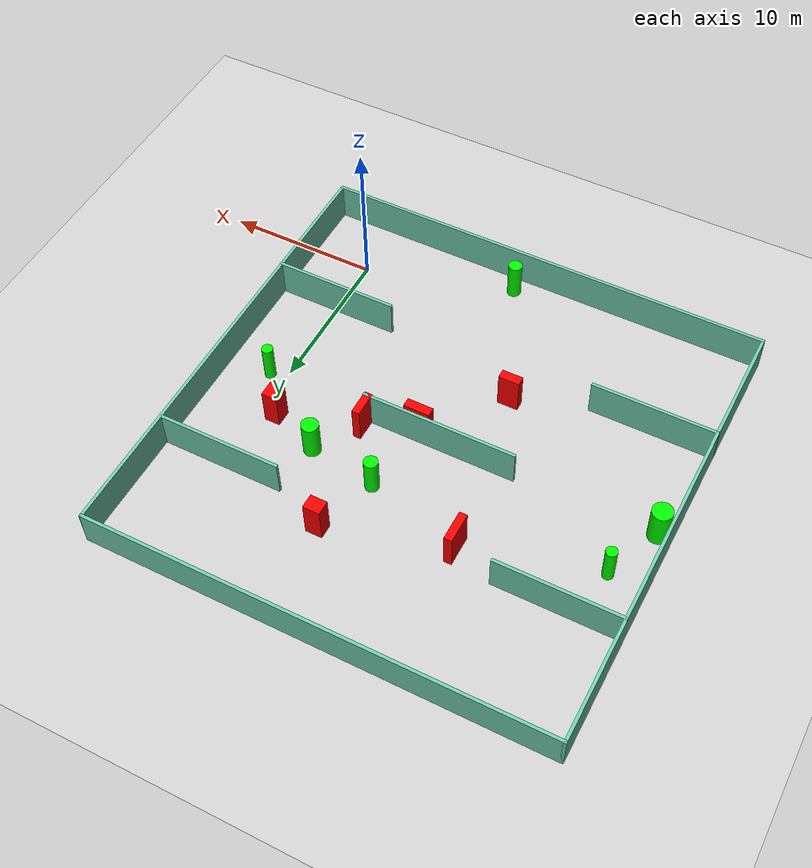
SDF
<sdf version="1.7">
 <world name="default">
  <light name="sun" type="directional">
   <pose>0 0 10 0 -0 0</pose>
   <diffuse>0.8 0.8 0.8 1</diffuse>
   <specular>0.2 0.2 0.2 1</specular>
   <attenuation>
    <range>1000</range>
    <constant>0.9</constant>
    <linear>0.01</linear>
    <quadratic>0.001</quadratic>
   </attenuation>
   <direction>-0.5 0.1 -0.9</direction>
   <spot><inner_angle>0</inner_angle><outer_angle>0</outer_angle><falloff>0</falloff></spot>
  </light>
  <model name="ground_plane">
   <static>1</static>
   <link name="link">
    <collision name="collision">
     <geometry><plane><normal>0 0 1</normal><size>100 100</size></plane></geometry>
     <surface>
      <contact><collide_bitmask>65535</collide_bitmask></contact>
      <friction><ode><mu>100</mu><mu2>50</mu2></ode></friction>
     </surface>
    </collision>
    <visual name="visual">
     <cast_shadows>0</cast_shadows>
     <geometry><plane><normal>0 0 1</normal><size>100 100</size></plane></geometry>
     <material>
      <script><uri>file://media/materials/scripts/gazebo.material</uri><name>Gazebo/Grey</name></script>
     </material>
    </visual>
   </link>
  </model>
  <gravity>0 0 -9.8</gravity>
  <magnetic_field>6e-06 2.3e-05 -4.2e-05</magnetic_field>
  <atmosphere type="adiabatic"/>
  <physics type="ode">
   <max_step_size>0.001</max_step_size>
   <real_time_factor>1</real_time_factor>
   <real_time_update_rate>1000</real_time_update_rate>
  </physics>
  <scene><ambient>0.4 0.4 0.4 1</ambient><background>0.7 0.7 0.7 1</background><shadows>1</shadows></scene>
  <spherical_coordinates>
   <surface_model>EARTH_WGS84</surface_model>
   <latitude_deg>0</latitude_deg>
   <longitude_deg>0</longitude_deg>
   <elevation>0</elevation>
   <heading_deg>0</heading_deg>
  </spherical_coordinates>
  <model name="my_base_walls">
   <link name="Wall_10">
    <collision name="Wall_10_Collision">
     <geometry><box><size>8.2 0.2 2.5</size></box></geometry>
     <pose>0 0 1.25 0 -0 0</pose>
    </collision>
    <visual name="Wall_10_Visual">
     <pose>0 0 1.25 0 -0 0</pose>
     <geometry><box><size>8.2 0.2 2.5</size></box></geometry>
     <material>
      <script><uri>file://media/materials/scripts/gazebo.material</uri><name>Gazebo/Grey</name></script>
      <ambient>0.435294 0.796078 0.67451 1</ambient>
     </material>
     <meta><layer>0</layer></meta>
    </visual>
    <pose>-11 -7 0 0 -0 0</pose>
   </link>
   <link name="Wall_12">
    <collision name="Wall_12_Collision">
     <geometry><box><size>8.2 0.2 2.5</size></box></geometry>
     <pose>0 0 1.25 0 -0 0</pose>
    </collision>
    <visual name="Wall_12_Visual">
     <pose>0 0 1.25 0 -0 0</pose>
     <geometry><box><size>8.2 0.2 2.5</size></box></geometry>
     <material>
      <script><uri>file://media/materials/scripts/gazebo.material</uri><name>Gazebo/Grey</name></script>
      <ambient>0.435294 0.796078 0.67451 1</ambient>
     </material>
     <meta><layer>0</layer></meta>
    </visual>
    <pose>-11 7 0 0 -0 0</pose>
   </link>
   <link name="Wall_14">
    <collision name="Wall_14_Collision">
     <geometry><box><size>8.2 0.2 2.5</size></box></geometry>
     <pose>0 0 1.25 0 -0 0</pose>
    </collision>
    <visual name="Wall_14_Visual">
     <pose>0 0 1.25 0 -0 0</pose>
     <geometry><box><size>8.2 0.2 2.5</size></box></geometry>
     <material>
      <script><uri>file://media/materials/scripts/gazebo.material</uri><name>Gazebo/Grey</name></script>
      <ambient>0.435294 0.796078 0.67451 1</ambient>
     </material>
     <meta><layer>0</layer></meta>
    </visual>
    <pose>11 7 0 0 -0 3.14159</pose>
   </link>
   <link name="Wall_16">
    <collision name="Wall_16_Collision">
     <geometry><box><size>10.2 0.2 2.5</size></box></geometry>
     <pose>0 0 1.25 0 -0 0</pose>
    </collision>
    <visual name="Wall_16_Visual">
     <pose>0 0 1.25 0 -0 0</pose>
     <geometry><box><size>10.2 0.2 2.5</size></box></geometry>
     <material>
      <script><uri>file://media/materials/scripts/gazebo.material</uri><name>Gazebo/Grey</name></script>
      <ambient>0.435294 0.796078 0.67451 1</ambient>
     </material>
     <meta><layer>0</layer></meta>
    </visual>
    <pose>0 0 0 0 -0 3.14159</pose>
   </link>
   <link name="Wall_2">
    <collision name="Wall_2_Collision">
     <geometry><box><size>30.2 0.2 2.5</size></box></geometry>
     <pose>0 0 1.25 0 -0 0</pose>
    </collision>
    <visual name="Wall_2_Visual">
     <pose>0 0 1.25 0 -0 0</pose>
     <geometry><box><size>30.2 0.2 2.5</size></box></geometry>
     <material>
      <script><uri>file://media/materials/scripts/gazebo.material</uri><name>Gazebo/Grey</name></script>
      <ambient>0.435294 0.796078 0.67451 1</ambient>
     </material>
     <meta><layer>0</layer></meta>
    </visual>
    <pose>0 -15 0 0 -0 3.14159</pose>
   </link>
   <link name="Wall_3">
    <collision name="Wall_3_Collision">
     <geometry><box><size>30.2 0.2 2.5</size></box></geometry>
     <pose>0 0 1.25 0 -0 0</pose>
    </collision>
    <visual name="Wall_3_Visual">
     <pose>0 0 1.25 0 -0 0</pose>
     <geometry><box><size>30.2 0.2 2.5</size></box></geometry>
     <material>
      <script><uri>file://media/materials/scripts/gazebo.material</uri><name>Gazebo/Grey</name></script>
      <ambient>0.435294 0.796078 0.67451 1</ambient>
     </material>
     <meta><layer>0</layer></meta>
    </visual>
    <pose>-15 0 0 0 -0 1.5708</pose>
   </link>
   <link name="Wall_4">
    <collision name="Wall_4_Collision">
     <geometry><box><size>30.2 0.2 2.5</size></box></geometry>
     <pose>0 0 1.25 0 -0 0</pose>
    </collision>
    <visual name="Wall_4_Visual">
     <pose>0 0 1.25 0 -0 0</pose>
     <geometry><box><size>30.2 0.2 2.5</size></box></geometry>
     <material>
      <script><uri>file://media/materials/scripts/gazebo.material</uri><name>Gazebo/Grey</name></script>
      <ambient>0.435294 0.796078 0.67451 1</ambient>
     </material>
     <meta><layer>0</layer></meta>
    </visual>
    <pose>0 15 0 0 -0 0</pose>
   </link>
   <link name="Wall_6">
    <collision name="Wall_6_Collision">
     <geometry><box><size>30.2 0.2 2.5</size></box></geometry>
     <pose>0 0 1.25 0 -0 0</pose>
    </collision>
    <visual name="Wall_6_Visual">
     <pose>0 0 1.25 0 -0 0</pose>
     <geometry><box><size>30.2 0.2 2.5</size></box></geometry>
     <material>
      <script><uri>file://media/materials/scripts/gazebo.material</uri><name>Gazebo/Grey</name></script>
      <ambient>0.435294 0.796078 0.67451 1</ambient>
     </material>
     <meta><layer>0</layer></meta>
    </visual>
    <pose>15 0 0 0 -0 1.5708</pose>
   </link>
   <link name="Wall_8">
    <collision name="Wall_8_Collision">
     <geometry><box><size>8.2 0.2 2.5</size></box></geometry>
     <pose>0 0 1.25 0 -0 0</pose>
    </collision>
    <visual name="Wall_8_Visual">
     <pose>0 0 1.25 0 -0 0</pose>
     <geometry><box><size>8.2 0.2 2.5</size></box></geometry>
     <material>
      <script><uri>file://media/materials/scripts/gazebo.material</uri><name>Gazebo/Grey</name></script>
      <ambient>0.435294 0.796078 0.67451 1</ambient>
     </material>
     <meta><layer>0</layer></meta>
    </visual>
    <pose>11 -7 0 0 -0 3.14159</pose>
   </link>
   <static>1</static>
   <pose>-11 11 0 0 -0 0</pose>
  </model>
  <model name="cylinder1">
   <static>1</static>
   <link name="link">
    <inertial>
     <mass>1</mass>
     <inertia><ixx>0.5</ixx><ixy>0</ixy><ixz>0</ixz><iyy>0.5</iyy><iyz>0</iyz><izz>1</izz></inertia>
    </inertial>
    <collision name="collision">
     <geometry><cylinder><radius>0.4539937307585389</radius><length>2.5</length></cylinder></geometry>
    </collision>
    <visual name="visual">
     <geometry><cylinder><radius>0.4539937307585389</radius><length>2.5</length></cylinder></geometry>
     <material>
      <ambient>0 1 0 1</ambient>
      <diffuse>0 1 0 1</diffuse>
      <specular>0.1 0.1 0.1 1</specular>
      <emissive>0 0 0 0</emissive>
     </material>
    </visual>
   </link>
   <pose>-9.575875693301054 -2.7565194381867344 1.25 0 0 0</pose>
  </model>
  <model name="cylinder2">
   <static>1</static>
   <link name="link">
    <inertial>
     <mass>1</mass>
     <inertia><ixx>0.5</ixx><ixy>0</ixy><ixz>0</ixz><iyy>0.5</iyy><iyz>0</iyz><izz>1</izz></inertia>
    </inertial>
    <collision name="collision">
     <geometry><cylinder><radius>0.364972988836997</radius><length>2.5</length></cylinder></geometry>
    </collision>
    <visual name="visual">
     <geometry><cylinder><radius>0.364972988836997</radius><length>2.5</length></cylinder></geometry>
     <material>
      <ambient>0 1 0 1</ambient>
      <diffuse>0 1 0 1</diffuse>
      <specular>0.1 0.1 0.1 1</specular>
      <emissive>0 0 0 0</emissive>
     </material>
    </visual>
   </link>
   <pose>1.0708070119371662 10.641311320500918 1.25 0 0 0</pose>
  </model>
  <model name="cylinder3">
   <static>1</static>
   <link name="link">
    <inertial>
     <mass>1</mass>
     <inertia><ixx>0.5</ixx><ixy>0</ixy><ixz>0</ixz><iyy>0.5</iyy><iyz>0</iyz><izz>1</izz></inertia>
    </inertial>
    <collision name="collision">
     <geometry><cylinder><radius>0.36592718399834695</radius><length>2.5</length></cylinder></geometry>
    </collision>
    <visual name="visual">
     <geometry><cylinder><radius>0.36592718399834695</radius><length>2.5</length></cylinder></geometry>
     <material>
      <ambient>0 1 0 1</ambient>
      <diffuse>0 1 0 1</diffuse>
      <specular>0.1 0.1 0.1 1</specular>
      <emissive>0 0 0 0</emissive>
     </material>
    </visual>
   </link>
   <pose>-23.653565591815592 14.472480887715655 1.25 0 0 0</pose>
  </model>
  <model name="cylinder4">
   <static>1</static>
   <link name="link">
    <inertial>
     <mass>1</mass>
     <inertia><ixx>0.5</ixx><ixy>0</ixy><ixz>0</ixz><iyy>0.5</iyy><iyz>0</iyz><izz>1</izz></inertia>
    </inertial>
    <collision name="collision">
     <geometry><cylinder><radius>0.45682356462875556</radius><length>2.5</length></cylinder></geometry>
    </collision>
    <visual name="visual">
     <geometry><cylinder><radius>0.45682356462875556</radius><length>2.5</length></cylinder></geometry>
     <material>
      <ambient>0 1 0 1</ambient>
      <diffuse>0 1 0 1</diffuse>
      <specular>0.1 0.1 0.1 1</specular>
      <emissive>0 0 0 0</emissive>
     </material>
    </visual>
   </link>
   <pose>-8.778053372903575 15.248018535739199 1.25 0 0 0</pose>
  </model>
  <model name="cylinder5">
   <static>1</static>
   <link name="link">
    <inertial>
     <mass>1</mass>
     <inertia><ixx>0.5</ixx><ixy>0</ixy><ixz>0</ixz><iyy>0.5</iyy><iyz>0</iyz><izz>1</izz></inertia>
    </inertial>
    <collision name="collision">
     <geometry><cylinder><radius>0.5557903769288038</radius><length>2.5</length></cylinder></geometry>
    </collision>
    <visual name="visual">
     <geometry><cylinder><radius>0.5557903769288038</radius><length>2.5</length></cylinder></geometry>
     <material>
      <ambient>0 1 0 1</ambient>
      <diffuse>0 1 0 1</diffuse>
      <specular>0.1 0.1 0.1 1</specular>
      <emissive>0 0 0 0</emissive>
     </material>
    </visual>
   </link>
   <pose>-4.25441067869377 14.532963356745107 1.25 0 0 0</pose>
  </model>
  <model name="cylinder6">
   <static>1</static>
   <link name="link">
    <inertial>
     <mass>1</mass>
     <inertia><ixx>0.5</ixx><ixy>0</ixy><ixz>0</ixz><iyy>0.5</iyy><iyz>0</iyz><izz>1</izz></inertia>
    </inertial>
    <collision name="collision">
     <geometry><cylinder><radius>0.6508311337155631</radius><length>2.5</length></cylinder></geometry>
    </collision>
    <visual name="visual">
     <geometry><cylinder><radius>0.6508311337155631</radius><length>2.5</length></cylinder></geometry>
     <material>
      <ambient>0 1 0 1</ambient>
      <diffuse>0 1 0 1</diffuse>
      <specular>0.1 0.1 0.1 1</specular>
      <emissive>0 0 0 0</emissive>
     </material>
    </visual>
   </link>
   <pose>-25.17655745808234 10.683847396810382 1.25 0 0 0</pose>
  </model>
  <model name="box1">
   <static>1</static>
   <link name="link">
    <inertial>
     <mass>1</mass>
     <inertia><ixx>0.083</ixx><ixy>0</ixy><ixz>0</ixz><iyy>0.083</iyy><iyz>0</iyz><izz>0.083</izz></inertia>
    </inertial>
    <collision name="collision">
     <geometry><box><size>0.5076446833373603 1.6703946138485688 2.5</size></box></geometry>
    </collision>
    <visual name="visual">
     <geometry><box><size>0.5076446833373603 1.6703946138485688 2.5</size></box></geometry>
     <material>
      <ambient>1 0 0 1</ambient>
      <diffuse>1 0 0 1</diffuse>
      <specular>0.1 0.1 0.1 1</specular>
      <emissive>0 0 0 0</emissive>
     </material>
    </visual>
    <sensor name="my_contact" type="contact">
     <contact><collision>box_collision</collision><topic>__default_topic__</topic></contact>
    </sensor>
   </link>
   <pose>-6.216239494517488 11.673523489376308 1.25 0 0 0</pose>
  </model>
  <model name="box2">
   <static>1</static>
   <link name="link">
    <inertial>
     <mass>1</mass>
     <inertia><ixx>0.083</ixx><ixy>0</ixy><ixz>0</ixz><iyy>0.083</iyy><iyz>0</iyz><izz>0.083</izz></inertia>
    </inertial>
    <collision name="collision">
     <geometry><box><size>1.0140140691291042 1.065945240320935 2.5</size></box></geometry>
    </collision>
    <visual name="visual">
     <geometry><box><size>1.0140140691291042 1.065945240320935 2.5</size></box></geometry>
     <material>
      <ambient>1 0 0 1</ambient>
      <diffuse>1 0 0 1</diffuse>
      <specular>0.1 0.1 0.1 1</specular>
      <emissive>0 0 0 0</emissive>
     </material>
    </visual>
    <sensor name="my_contact" type="contact">
     <contact><collision>box_collision</collision><topic>__default_topic__</topic></contact>
    </sensor>
   </link>
   <pose>-1.0008176886118214 13.323246515089252 1.25 0 0 0</pose>
  </model>
  <model name="box3">
   <static>1</static>
   <link name="link">
    <inertial>
     <mass>1</mass>
     <inertia><ixx>0.083</ixx><ixy>0</ixy><ixz>0</ixz><iyy>0.083</iyy><iyz>0</iyz><izz>0.083</izz></inertia>
    </inertial>
    <collision name="collision">
     <geometry><box><size>0.5140815961409178 1.9756836592150264 2.5</size></box></geometry>
    </collision>
    <visual name="visual">
     <geometry><box><size>0.5140815961409178 1.9756836592150264 2.5</size></box></geometry>
     <material>
      <ambient>1 0 0 1</ambient>
      <diffuse>1 0 0 1</diffuse>
      <specular>0.1 0.1 0.1 1</specular>
      <emissive>0 0 0 0</emissive>
     </material>
    </visual>
    <sensor name="my_contact" type="contact">
     <contact><collision>box_collision</collision><topic>__default_topic__</topic></contact>
    </sensor>
   </link>
   <pose>-15.191578680957686 16.9744826361503 1.25 0 0 0</pose>
  </model>
  <model name="box4">
   <static>1</static>
   <link name="link">
    <inertial>
     <mass>1</mass>
     <inertia><ixx>0.083</ixx><ixy>0</ixy><ixz>0</ixz><iyy>0.083</iyy><iyz>0</iyz><izz>0.083</izz></inertia>
    </inertial>
    <collision name="collision">
     <geometry><box><size>1.7143639678552551 0.5931093491831673 2.5</size></box></geometry>
    </collision>
    <visual name="visual">
     <geometry><box><size>1.7143639678552551 0.5931093491831673 2.5</size></box></geometry>
     <material>
      <ambient>1 0 0 1</ambient>
      <diffuse>1 0 0 1</diffuse>
      <specular>0.1 0.1 0.1 1</specular>
      <emissive>0 0 0 0</emissive>
     </material>
    </visual>
    <sensor name="my_contact" type="contact">
     <contact><collision>box_collision</collision><topic>__default_topic__</topic></contact>
    </sensor>
   </link>
   <pose>-9.373145733011043 10.404964915329296 1.25 0 0 0</pose>
  </model>
  <model name="box5">
   <static>1</static>
   <link name="link">
    <inertial>
     <mass>1</mass>
     <inertia><ixx>0.083</ixx><ixy>0</ixy><ixz>0</ixz><iyy>0.083</iyy><iyz>0</iyz><izz>0.083</izz></inertia>
    </inertial>
    <collision name="collision">
     <geometry><box><size>1.1027650173018517 0.9413593944751056 2.5</size></box></geometry>
    </collision>
    <visual name="visual">
     <geometry><box><size>1.1027650173018517 0.9413593944751056 2.5</size></box></geometry>
     <material>
      <ambient>1 0 0 1</ambient>
      <diffuse>1 0 0 1</diffuse>
      <specular>0.1 0.1 0.1 1</specular>
      <emissive>0 0 0 0</emissive>
     </material>
    </visual>
    <sensor name="my_contact" type="contact">
     <contact><collision>box_collision</collision><topic>__default_topic__</topic></contact>
    </sensor>
   </link>
   <pose>-7.396984072363097 19.310635127232885 1.25 0 0 0</pose>
  </model>
  <model name="box6">
   <static>1</static>
   <link name="link">
    <inertial>
     <mass>1</mass>
     <inertia><ixx>0.083</ixx><ixy>0</ixy><ixz>0</ixz><iyy>0.083</iyy><iyz>0</iyz><izz>0.083</izz></inertia>
    </inertial>
    <collision name="collision">
     <geometry><box><size>1.3704814712603368 0.6173140322879402 2.5</size></box></geometry>
    </collision>
    <visual name="visual">
     <geometry><box><size>1.3704814712603368 0.6173140322879402 2.5</size></box></geometry>
     <material>
      <ambient>1 0 0 1</ambient>
      <diffuse>1 0 0 1</diffuse>
      <specular>0.1 0.1 0.1 1</specular>
      <emissive>0 0 0 0</emissive>
     </material>
    </visual>
    <sensor name="my_contact" type="contact">
     <contact><collision>box_collision</collision><topic>__default_topic__</topic></contact>
    </sensor>
   </link>
   <pose>-13.313982121660569 5.808423660505099 1.25 0 0 0</pose>
  </model>
 </world>
</sdf>
